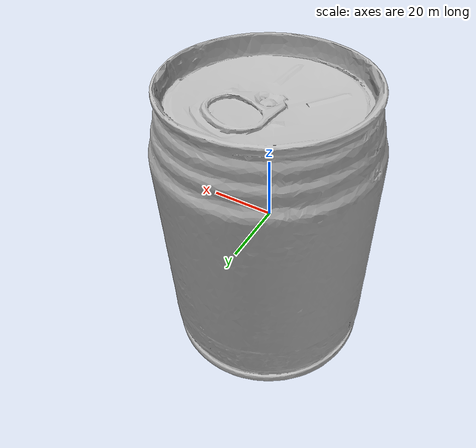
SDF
<sdf version="1.4">
 <world name="default">
  <light name="light1" type="point">
   <pose>0 0 1 0 0 0</pose>
   <diffuse>3 3 3 1</diffuse>
   <specular>3 3 3 1</specular>
  </light>
  <light name="light2" type="point">
   <pose>0 0.5 2 0 0 0</pose>
   <diffuse>1 1 1 1</diffuse>
   <specular>1 1 1 1</specular>
  </light>
  <light name="light3" type="point">
   <pose>0 0.5 2 0 0 0</pose>
   <diffuse>3 3 3 1</diffuse>
   <specular>3 3 3 1</specular>
  </light>
  <scene><ambient>0.7 0.7 0.7</ambient></scene>
  <model name="box1">
   <link name="link_box1">
    <collision name="default">
     <geometry>
      <mesh><uri>model://wooden_puzzle1/collision_meshes/collision.obj</uri><scale>1.0 1.0 1.0</scale></mesh>
     </geometry>
     <surface>
      <friction><ode><mu>0.5</mu><mu2>0.5</mu2></ode></friction>
      <contact><ode><max_vel>0</max_vel><min_depth>0.0001</min_depth><kp>1e8</kp></ode></contact>
     </surface>
    </collision>
    <visual name="default">
     <geometry>
      <mesh><uri>model://wooden_puzzle1/visual_meshes/visual.dae</uri><scale>1.0 1.0 1.0</scale></mesh>
     </geometry>
    </visual>
    <inertial>
     <mass>0.025116289034485817</mass>
     <pose>-0.00017350679263472557 7.972260937094688e-05 -9.191555000143126e-05 -0.07784885804399136 -0.2636065522190298 -0.5528757227143044</pose>
     <inertia>
      <ixx>4.7387575e-06</ixx>
      <iyy>4.647534e-06</iyy>
      <izz>4.7029785e-06</izz>
      <ixy>0</ixy>
      <ixz>0</ixz>
      <iyz>0</iyz>
     </inertia>
    </inertial>
   </link>
   <pose>0.22522598505020142 0.2700771391391754 0.016802024096250534 0.010511315446144648 -0.009453197548907093 -2.2192998050616226</pose>
  </model>
  <model name="box3">
   <link name="link_box3">
    <collision name="default">
     <geometry>
      <mesh><uri>model://wooden_puzzle2/collision_meshes/collision.obj</uri><scale>1.0 1.0 1.0</scale></mesh>
     </geometry>
     <surface>
      <friction><ode><mu>0.5</mu><mu2>0.5</mu2></ode></friction>
      <contact><ode><max_vel>0</max_vel><min_depth>0.0001</min_depth><kp>1e8</kp></ode></contact>
     </surface>
    </collision>
    <visual name="default">
     <geometry>
      <mesh><uri>model://wooden_puzzle2/visual_meshes/visual.dae</uri><scale>1.0 1.0 1.0</scale></mesh>
     </geometry>
    </visual>
    <inertial>
     <mass>0.025376593694090843</mass>
     <pose>2.7402536943554878e-05 4.997663199901581e-05 6.587122334167361e-05 -0.1920355258808483 0.6112750807505014 -0.6338716229052327</pose>
     <inertia>
      <ixx>4.7172375e-06</ixx>
      <iyy>4.8472266e-06</iyy>
      <izz>4.778271e-06</izz>
      <ixy>0</ixy>
      <ixz>0</ixz>
      <iyz>0</iyz>
     </inertia>
    </inertial>
   </link>
   <pose>0.06912721693515778 -0.38317590951919556 0.01691773161292076 0.02084770575081642 0.0007219577234873364 0.045086126661970774</pose>
  </model>
  <model name="can1">
   <link name="link_can1">
    <collision name="default">
     <geometry>
      <mesh><uri>model://redbull/collision_meshes/collision.obj</uri><scale>1.0 1.0 1.0</scale></mesh>
     </geometry>
     <surface>
      <friction><ode><mu>0.5</mu><mu2>0.5</mu2></ode></friction>
      <contact><ode><max_vel>0</max_vel><min_depth>0.0001</min_depth><kp>1e8</kp></ode></contact>
     </surface>
    </collision>
    <visual name="default">
     <geometry>
      <mesh><uri>model://redbull/visual_meshes/visual.dae</uri><scale>1.0 1.0 1.0</scale></mesh>
     </geometry>
    </visual>
    <inertial>
     <mass>0.2544018626213074</mass>
     <pose>-2.2126756448415108e-05 -0.0001265947794308886 -0.0006860987632535398 0.0011376600102847077 -0.01080087162846833 0.5858227764205248</pose>
     <inertia>
      <ixx>0.00023919248</ixx>
      <iyy>0.00023939437</iyy>
      <izz>0.00014194298</izz>
      <ixy>0</ixy>
      <ixz>0</ixz>
      <iyz>0</iyz>
     </inertia>
    </inertial>
   </link>
   <pose>-0.010824952274560928 0.04103786125779152 0.046385619789361954 -0.010489072247586698 0.007261348730831844 3.113067491908271</pose>
  </model>
  <model name="can2">
   <link name="link_can2">
    <collision name="default">
     <geometry>
      <mesh><uri>model://pepsi/collision_meshes/collision.obj</uri><scale>1.0 1.0 1.0</scale></mesh>
     </geometry>
     <surface>
      <friction><ode><mu>0.5</mu><mu2>0.5</mu2></ode></friction>
      <contact><ode><max_vel>0</max_vel><min_depth>0.0001</min_depth><kp>1e8</kp></ode></contact>
     </surface>
    </collision>
    <visual name="default">
     <geometry><mesh><uri>model://pepsi/visual_meshes/visual.dae</uri><scale>1.0 1.0 1.0</scale></mesh></geometry>
    </visual>
    <inertial>
     <mass>0.4552207291126251</mass>
     <pose>-7.5590331107378e-05 2.99312814604491e-05 -0.0003384356095921248 -0.0010679690801074441 -0.0021734768369219134 0.5674650232372158</pose>
     <inertia>
      <ixx>0.0009068869</ixx>
      <iyy>0.0009062263</iyy>
      <izz>0.00019301806</izz>
      <ixy>0</ixy>
      <ixz>0</ixz>
      <iyz>0</iyz>
     </inertia>
    </inertial>
   </link>
   <pose>0.16394416987895966 0.07644275575876236 0.0744962990283966 -1.8748312186137395e-05 1.983530348178522e-06 2.2814063019795014</pose>
  </model>
  <physics type="ode">
   <max_contacts>50</max_contacts>
   <ode>
    <solver><type>quick</type><iters>75</iters></solver>
    <constraints>
     <contact_max_correcting_vel>0</contact_max_correcting_vel>
     <contact_surface_layer>0</contact_surface_layer>
    </constraints>
   </ode>
  </physics>
 </world>
</sdf>
